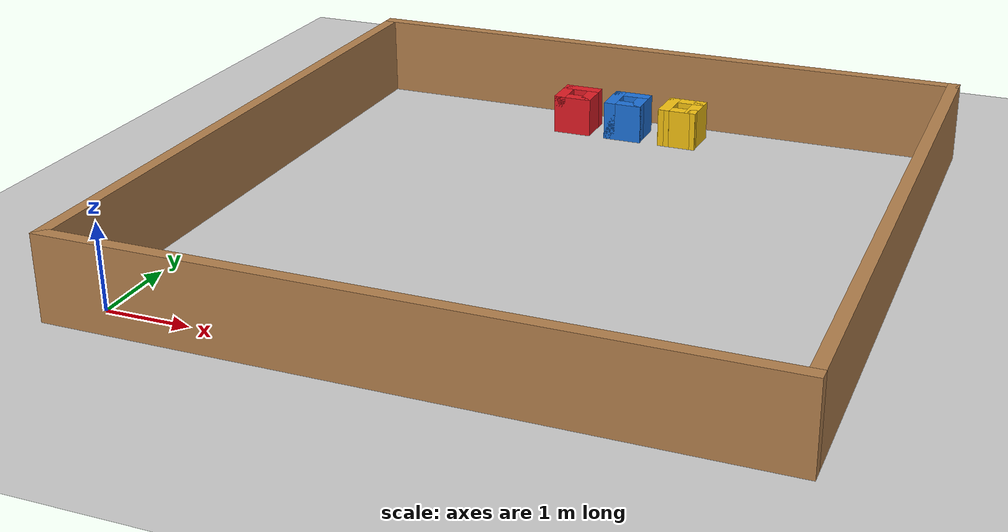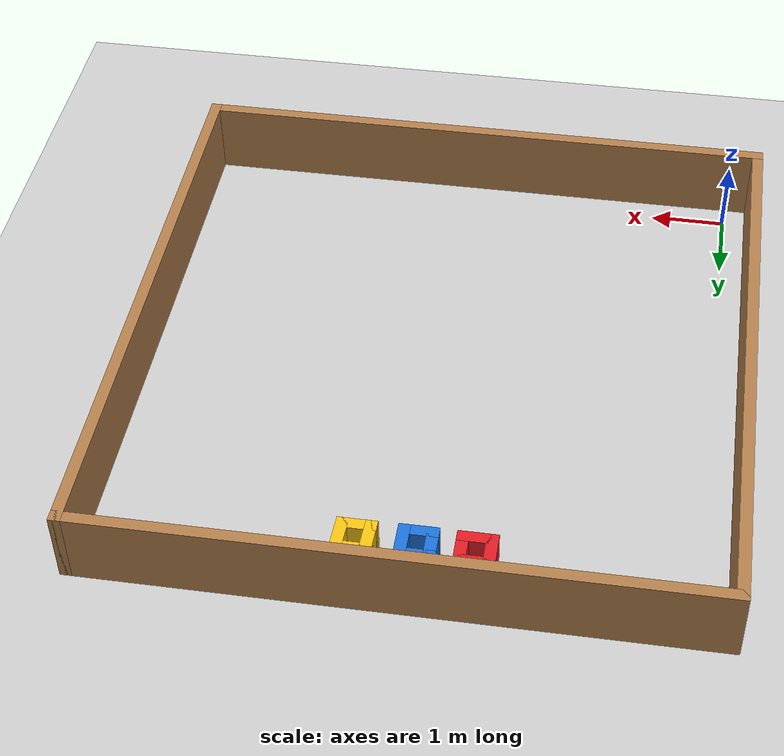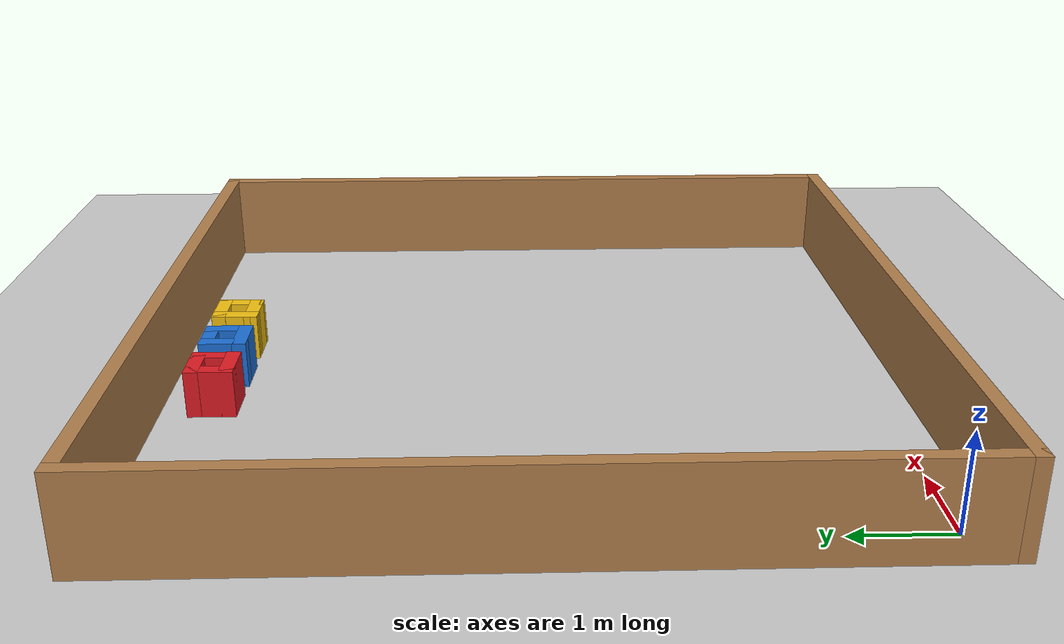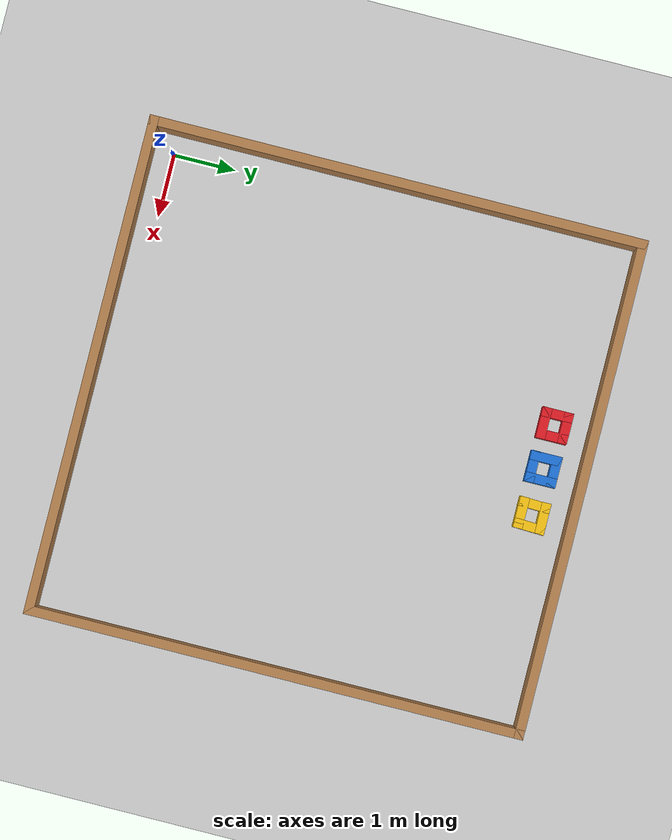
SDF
<sdf version="1.7">
 <world name="default">
  <light name="sun" type="directional">
   <pose>0 0 10 0 -0 0</pose>
   <diffuse>0.8 0.8 0.8 1</diffuse>
   <specular>0.2 0.2 0.2 1</specular>
   <attenuation>
    <range>1000</range>
    <constant>0.9</constant>
    <linear>0.01</linear>
    <quadratic>0.001</quadratic>
   </attenuation>
   <direction>-0.5 0.1 -0.9</direction>
   <spot><inner_angle>0</inner_angle><outer_angle>0</outer_angle><falloff>0</falloff></spot>
  </light>
  <model name="ground_plane">
   <static>1</static>
   <link name="link">
    <collision name="collision">
     <geometry><plane><normal>0 0 1</normal><size>100 100</size></plane></geometry>
     <surface>
      <contact><collide_bitmask>65535</collide_bitmask></contact>
      <friction><ode><mu>100</mu><mu2>50</mu2></ode></friction>
     </surface>
    </collision>
    <visual name="visual">
     <cast_shadows>0</cast_shadows>
     <geometry><plane><normal>0 0 1</normal><size>100 100</size></plane></geometry>
     <material>
      <script><uri>file://media/materials/scripts/gazebo.material</uri><name>Gazebo/Grey</name></script>
     </material>
    </visual>
   </link>
  </model>
  <gravity>0 0 -9.8</gravity>
  <magnetic_field>6e-06 2.3e-05 -4.2e-05</magnetic_field>
  <atmosphere type="adiabatic"/>
  <physics type="ode">
   <max_step_size>0.001</max_step_size>
   <real_time_factor>1</real_time_factor>
   <real_time_update_rate>1000</real_time_update_rate>
  </physics>
  <scene><ambient>0.4 0.4 0.4 1</ambient><background>0.7 0.7 0.7 1</background><shadows>1</shadows></scene>
  <audio><device>default</device></audio>
  <spherical_coordinates>
   <surface_model>EARTH_WGS84</surface_model>
   <latitude_deg>0</latitude_deg>
   <longitude_deg>0</longitude_deg>
   <elevation>0</elevation>
   <heading_deg>0</heading_deg>
  </spherical_coordinates>
  <model name="feild">
   <pose>3.541 3.538 0 0 -0 0</pose>
   <link name="Wall_0">
    <collision name="Wall_0_Collision">
     <geometry><box><size>8 0.15 1</size></box></geometry>
     <pose>0 0 0.5 0 -0 0</pose>
    </collision>
    <visual name="Wall_0_Visual">
     <pose>0 0 0.5 0 -0 0</pose>
     <geometry><box><size>8 0.15 1</size></box></geometry>
     <material>
      <script><uri>file://media/materials/scripts/gazebo.material</uri><name>Gazebo/Wood</name></script>
      <ambient>1 1 1 1</ambient>
     </material>
     <meta><layer>0</layer></meta>
    </visual>
    <pose>-0 -3.925 0 0 -0 0</pose>
   </link>
   <link name="Wall_10">
    <collision name="Wall_10_Collision">
     <geometry><box><size>0.5 0.15 0.5</size></box></geometry>
     <pose>0 0 0.25 0 -0 0</pose>
    </collision>
    <visual name="Wall_10_Visual">
     <pose>0 0 0.25 0 -0 0</pose>
     <geometry><box><size>0.5 0.15 0.5</size></box></geometry>
     <material>
      <script><uri>file://media/materials/scripts/gazebo.material</uri><name>Gazebo/Grey</name></script>
      <ambient>0.878431 0.105882 0.141176 1</ambient>
     </material>
     <meta><layer>0</layer></meta>
    </visual>
    <pose>-0.871 3.132 0 0 -0 0</pose>
   </link>
   <link name="Wall_11">
    <collision name="Wall_11_Collision">
     <geometry><box><size>0.5 0.15 0.5</size></box></geometry>
     <pose>0 0 0.25 0 -0 0</pose>
    </collision>
    <visual name="Wall_11_Visual">
     <pose>0 0 0.25 0 -0 0</pose>
     <geometry><box><size>0.5 0.15 0.5</size></box></geometry>
     <material>
      <script><uri>file://media/materials/scripts/gazebo.material</uri><name>Gazebo/Grey</name></script>
      <ambient>0.878431 0.105882 0.141176 1</ambient>
     </material>
     <meta><layer>0</layer></meta>
    </visual>
    <pose>-0.696 3.307 0 0 -0 1.5708</pose>
   </link>
   <link name="Wall_12">
    <collision name="Wall_12_Collision">
     <geometry><box><size>0.5 0.15 0.5</size></box></geometry>
     <pose>0 0 0.25 0 -0 0</pose>
    </collision>
    <visual name="Wall_12_Visual">
     <pose>0 0 0.25 0 -0 0</pose>
     <geometry><box><size>0.5 0.15 0.5</size></box></geometry>
     <material>
      <script><uri>file://media/materials/scripts/gazebo.material</uri><name>Gazebo/Grey</name></script>
      <ambient>0.878431 0.105882 0.141176 1</ambient>
     </material>
     <meta><layer>0</layer></meta>
    </visual>
    <pose>-0.871 3.482 0 0 -0 3.14159</pose>
   </link>
   <link name="Wall_19">
    <collision name="Wall_19_Collision">
     <geometry><box><size>0.5 0.15 0.5</size></box></geometry>
     <pose>0 0 0.25 0 -0 0</pose>
    </collision>
    <visual name="Wall_19_Visual">
     <pose>0 0 0.25 0 -0 0</pose>
     <geometry><box><size>0.5 0.15 0.5</size></box></geometry>
     <material>
      <script><uri>file://media/materials/scripts/gazebo.material</uri><name>Gazebo/Grey</name></script>
      <ambient>0.109804 0.443137 0.847059 1</ambient>
     </material>
     <meta><layer>0</layer></meta>
    </visual>
    <pose>-0.168 3.476 0 0 -0 0</pose>
   </link>
   <link name="Wall_20">
    <collision name="Wall_20_Collision">
     <geometry><box><size>0.5 0.15 0.5</size></box></geometry>
     <pose>0 0 0.25 0 -0 0</pose>
    </collision>
    <visual name="Wall_20_Visual">
     <pose>0 0 0.25 0 -0 0</pose>
     <geometry><box><size>0.5 0.15 0.5</size></box></geometry>
     <material>
      <script><uri>file://media/materials/scripts/gazebo.material</uri><name>Gazebo/Grey</name></script>
      <ambient>0.109804 0.443137 0.847059 1</ambient>
     </material>
     <meta><layer>0</layer></meta>
    </visual>
    <pose>0.007 3.301 0 0 -0 -1.5708</pose>
   </link>
   <link name="Wall_21">
    <collision name="Wall_21_Collision">
     <geometry><box><size>0.5 0.15 0.5</size></box></geometry>
     <pose>0 0 0.25 0 -0 0</pose>
    </collision>
    <visual name="Wall_21_Visual">
     <pose>0 0 0.25 0 -0 0</pose>
     <geometry><box><size>0.5 0.15 0.5</size></box></geometry>
     <material>
      <script><uri>file://media/materials/scripts/gazebo.material</uri><name>Gazebo/Grey</name></script>
      <ambient>0.109804 0.443137 0.847059 1</ambient>
     </material>
     <meta><layer>0</layer></meta>
    </visual>
    <pose>-0.168 3.126 0 0 -0 3.14159</pose>
   </link>
   <link name="Wall_22">
    <collision name="Wall_22_Collision">
     <geometry><box><size>0.5 0.15 0.5</size></box></geometry>
     <pose>0 0 0.25 0 -0 0</pose>
    </collision>
    <visual name="Wall_22_Visual">
     <pose>0 0 0.25 0 -0 0</pose>
     <geometry><box><size>0.5 0.15 0.5</size></box></geometry>
     <material>
      <script><uri>file://media/materials/scripts/gazebo.material</uri><name>Gazebo/Grey</name></script>
      <ambient>0.109804 0.443137 0.847059 1</ambient>
     </material>
     <meta><layer>0</layer></meta>
    </visual>
    <pose>-0.343 3.301 0 0 -0 1.5708</pose>
   </link>
   <link name="Wall_25">
    <collision name="Wall_25_Collision">
     <geometry><box><size>0.5 0.15 0.5</size></box></geometry>
     <pose>0 0 0.25 0 -0 0</pose>
    </collision>
    <visual name="Wall_25_Visual">
     <pose>0 0 0.25 0 -0 0</pose>
     <geometry><box><size>0.5 0.15 0.5</size></box></geometry>
     <material>
      <script><uri>file://media/materials/scripts/gazebo.material</uri><name>Gazebo/Grey</name></script>
      <ambient>0.960784 0.760784 0.0666667 1</ambient>
     </material>
     <meta><layer>0</layer></meta>
    </visual>
    <pose>0.406575 3.307 0 0 -0 -1.60835</pose>
   </link>
   <link name="Wall_26">
    <collision name="Wall_26_Collision">
     <geometry><box><size>0.5 0.15 0.5</size></box></geometry>
     <pose>0 0 0.25 0 -0 0</pose>
    </collision>
    <visual name="Wall_26_Visual">
     <pose>0 0 0.25 0 -0 0</pose>
     <geometry><box><size>0.5 0.15 0.5</size></box></geometry>
     <material>
      <script><uri>file://media/materials/scripts/gazebo.material</uri><name>Gazebo/Grey</name></script>
      <ambient>0.960784 0.760784 0.0666667 1</ambient>
     </material>
     <meta><layer>0</layer></meta>
    </visual>
    <pose>0.575 3.132 0 0 -0 0</pose>
   </link>
   <link name="Wall_27">
    <collision name="Wall_27_Collision">
     <geometry><box><size>0.5 0.15 0.5</size></box></geometry>
     <pose>0 0 0.25 0 -0 0</pose>
    </collision>
    <visual name="Wall_27_Visual">
     <pose>0 0 0.25 0 -0 0</pose>
     <geometry><box><size>0.5 0.15 0.5</size></box></geometry>
     <material>
      <script><uri>file://media/materials/scripts/gazebo.material</uri><name>Gazebo/Grey</name></script>
      <ambient>0.960784 0.760784 0.0666667 1</ambient>
     </material>
     <meta><layer>0</layer></meta>
    </visual>
    <pose>0.756575 3.307 0 0 -0 1.53324</pose>
   </link>
   <link name="Wall_28">
    <collision name="Wall_28_Collision">
     <geometry><box><size>0.5 0.15 0.5</size></box></geometry>
     <pose>0 0 0.25 0 -0 0</pose>
    </collision>
    <visual name="Wall_28_Visual">
     <pose>0 0 0.25 0 -0 0</pose>
     <geometry><box><size>0.5 0.15 0.5</size></box></geometry>
     <material>
      <script><uri>file://media/materials/scripts/gazebo.material</uri><name>Gazebo/Grey</name></script>
      <ambient>0.960784 0.760784 0.0666667 1</ambient>
     </material>
     <meta><layer>0</layer></meta>
    </visual>
    <pose>0.581575 3.482 0 0 -0 3.14159</pose>
   </link>
   <link name="Wall_5">
    <collision name="Wall_5_Collision">
     <geometry><box><size>8 0.15 1</size></box></geometry>
     <pose>0 0 0.5 0 -0 0</pose>
    </collision>
    <visual name="Wall_5_Visual">
     <pose>0 0 0.5 0 -0 0</pose>
     <geometry><box><size>8 0.15 1</size></box></geometry>
     <material>
      <script><uri>file://media/materials/scripts/gazebo.material</uri><name>Gazebo/Wood</name></script>
      <ambient>1 1 1 1</ambient>
     </material>
     <meta><layer>0</layer></meta>
    </visual>
    <pose>-3.925 0 0 0 -0 1.5708</pose>
   </link>
   <link name="Wall_6">
    <collision name="Wall_6_Collision">
     <geometry><box><size>8 0.15 1</size></box></geometry>
     <pose>0 0 0.5 0 -0 0</pose>
    </collision>
    <visual name="Wall_6_Visual">
     <pose>0 0 0.5 0 -0 0</pose>
     <geometry><box><size>8 0.15 1</size></box></geometry>
     <material>
      <script><uri>file://media/materials/scripts/gazebo.material</uri><name>Gazebo/Wood</name></script>
      <ambient>1 1 1 1</ambient>
     </material>
     <meta><layer>0</layer></meta>
    </visual>
    <pose>-0 3.925 0 0 -0 0</pose>
   </link>
   <link name="Wall_7">
    <collision name="Wall_7_Collision">
     <geometry><box><size>8 0.15 1</size></box></geometry>
     <pose>0 0 0.5 0 -0 0</pose>
    </collision>
    <visual name="Wall_7_Visual">
     <pose>0 0 0.5 0 -0 0</pose>
     <geometry><box><size>8 0.15 1</size></box></geometry>
     <material>
      <script><uri>file://media/materials/scripts/gazebo.material</uri><name>Gazebo/Wood</name></script>
      <ambient>1 1 1 1</ambient>
     </material>
     <meta><layer>0</layer></meta>
    </visual>
    <pose>3.925 0 0 0 -0 -1.5708</pose>
   </link>
   <link name="Wall_9">
    <collision name="Wall_9_Collision">
     <geometry><box><size>0.5 0.15 0.5</size></box></geometry>
     <pose>0 0 0.25 0 -0 0</pose>
    </collision>
    <visual name="Wall_9_Visual">
     <pose>0 0 0.25 0 -0 0</pose>
     <geometry><box><size>0.5 0.15 0.5</size></box></geometry>
     <material>
      <script><uri>file://media/materials/scripts/gazebo.material</uri><name>Gazebo/Grey</name></script>
      <ambient>0.878431 0.105882 0.141176 1</ambient>
     </material>
     <meta><layer>0</layer></meta>
    </visual>
    <pose>-1.046 3.307 0 0 -0 -1.5708</pose>
   </link>
   <static>1</static>
  </model>
 </world>
</sdf>
